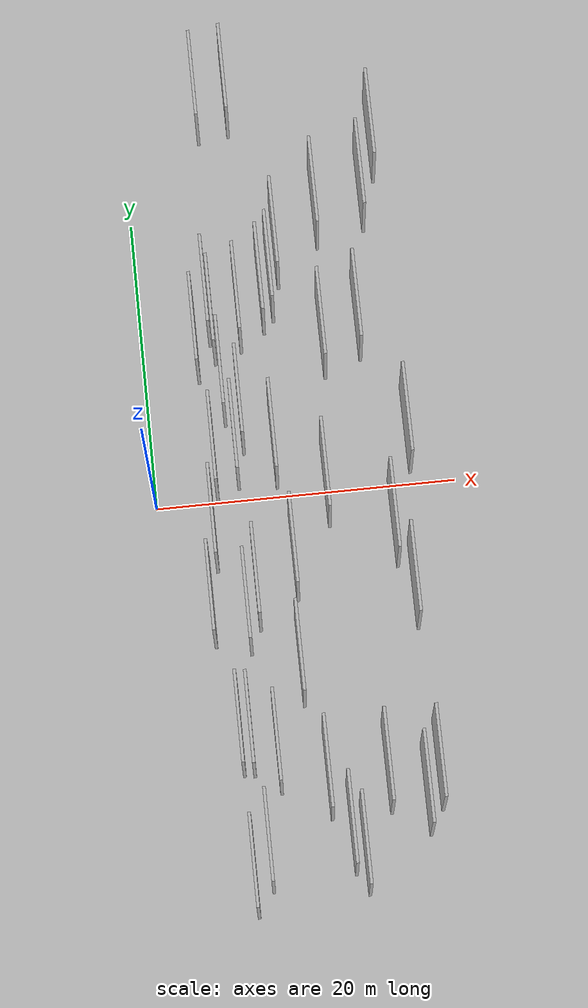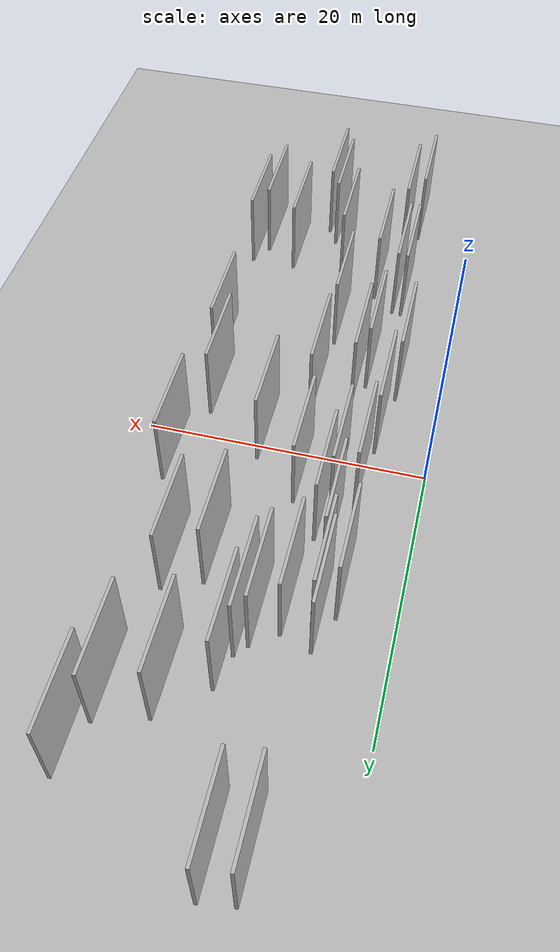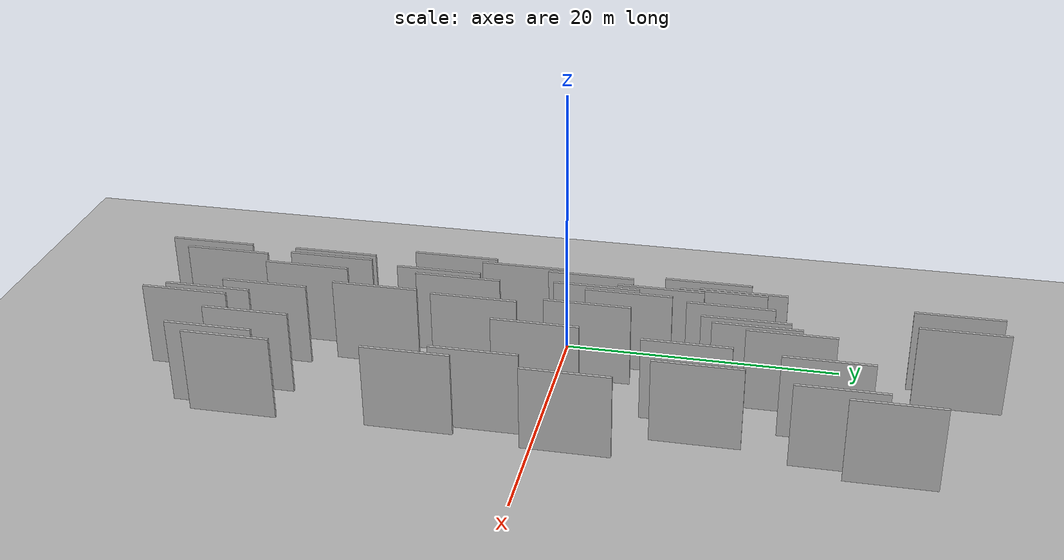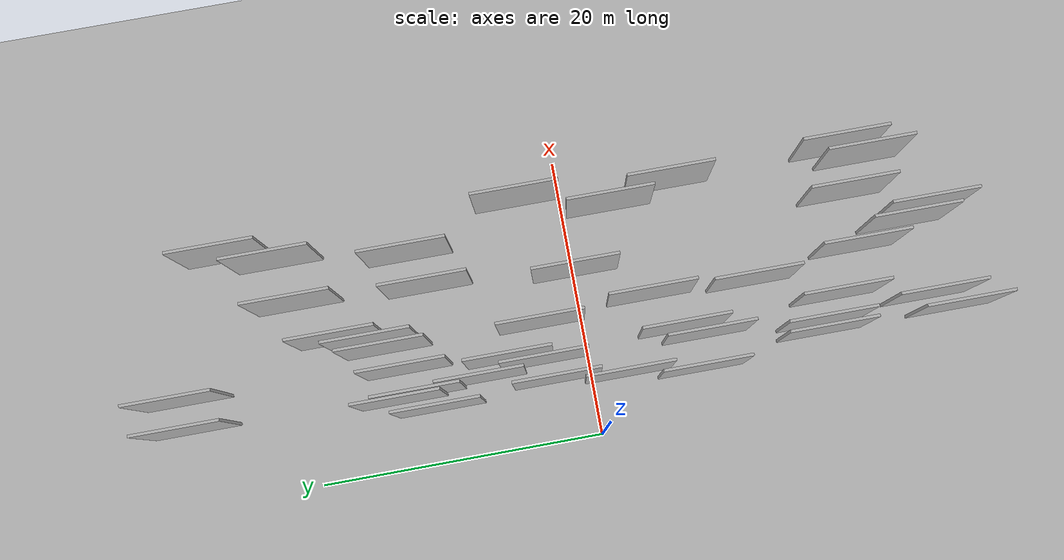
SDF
<?xml version="1.0" encoding="utf-8"?>

<sdf version="1.6">

   <world name="default">

      <gui fullscreen="0">

         <camera name="user_camera">

            <pose>-15 0 4.57585 0 0 0</pose>

            <view_controller>orbit</view_controller>

         </camera>

      </gui>

      <scene>

         <sky>

           <clouds>

             <speed>12</speed>

           </clouds>

         </sky>

         <ambient>0.4 0.4 0.4 1</ambient>

         <background>0.7 0.7 0.7 1</background>

         <shadows>1</shadows>

      </scene>

      <gravity>0 0 -9.8066</gravity>

      <magnetic_field>6e-06 2.3e-05 -4.2e-05</magnetic_field>

      <physics default="0" name="default_physics" type="ode">

         <ode>

            <solver>

               <type>quick</type>

               <iters>10</iters>

               <sor>1.0</sor>

               <use_dynamic_moi_rescaling>0</use_dynamic_moi_rescaling>

            </solver>

            <constraints>

               <cfm>0</cfm>

               <erp>0.2</erp>

               <contact_max_correcting_vel>100</contact_max_correcting_vel>

               <contact_surface_layer>0.001</contact_surface_layer>

            </constraints>

         </ode>

         <max_step_size>0.004</max_step_size>

         <real_time_factor>1</real_time_factor>

         <real_time_update_rate>250</real_time_update_rate>

      </physics>

      <light name="sun" type="directional">

         <cast_shadows>1</cast_shadows>

         <pose>0 0 10 0 0 0</pose>

         <diffuse>0.8 0.8 0.8 1</diffuse>

         <specular>0.2 0.2 0.2 1</specular>

         <attenuation>

            <range>1000</range>

            <constant>0.9</constant>

            <linear>0.01</linear>

            <quadratic>0.001</quadratic>

         </attenuation>

         <direction>-0.5 0.1 -0.9</direction>

      </light>

      <include>

         <name>ground_plane_1</name>

         <uri>model://HANNAS_ground_plane</uri>

         <pose>0 0 0  0 0 0</pose>

      </include>

      <include>

         <name>ground_plane_2</name>

         <uri>model://HANNAS_ground_plane</uri>

         <pose>100 0 0  0 0 0</pose>

      </include>

      <model name="HANNAS_wall_1">

         <static>1</static>

         <pose frame="">9.5216 16.7080 2.5 0.000000 0.000000 1.570796</pose>

         <link name="link">

            <pose frame="">0 0 3.00 0 0 0</pose>

            <collision name="collision">

               <geometry>

                  <box>

                     <size>6.00 0.2 6.00</size>

                  </box>

               </geometry>

               <max_contacts>10</max_contacts>

               <surface>

                  <contact>

                     <ode/>

                  </contact>

                  <bounce/>

                  <friction>

                     <torsional>

                        <ode/>

                     </torsional>

                     <ode/>

                  </friction>

               </surface>

            </collision>

            <visual name="visual">

               <cast_shadows>0</cast_shadows>

               <geometry>

                  <box>

                     <size>6.00 0.2 6.00</size>

                  </box>

               </geometry>

               <material>

                  <script>

                     <uri>model://HANNAS_wall/materials/scripts</uri>

                     <uri>model://HANNAS_wall/materials/textures</uri>

                     <name>vrc/HANNAS_wall</name>

                  </script>

               </material>

            </visual>

            <self_collide>0</self_collide>

            <enable_wind>0</enable_wind>

            <kinematic>0</kinematic>

         </link>

      </model>

      <model name="HANNAS_wall_2">

         <static>1</static>

         <pose frame="">6.0941 -6.5864 2.5 0.000000 0.000000 1.570796</pose>

         <link name="link">

            <pose frame="">0 0 3.00 0 0 0</pose>

            <collision name="collision">

               <geometry>

                  <box>

                     <size>6.00 0.2 6.00</size>

                  </box>

               </geometry>

               <max_contacts>10</max_contacts>

               <surface>

                  <contact>

                     <ode/>

                  </contact>

                  <bounce/>

                  <friction>

                     <torsional>

                        <ode/>

                     </torsional>

                     <ode/>

                  </friction>

               </surface>

            </collision>

            <visual name="visual">

               <cast_shadows>0</cast_shadows>

               <geometry>

                  <box>

                     <size>6.00 0.2 6.00</size>

                  </box>

               </geometry>

               <material>

                  <script>

                     <uri>model://HANNAS_wall/materials/scripts</uri>

                     <uri>model://HANNAS_wall/materials/textures</uri>

                     <name>vrc/HANNAS_wall</name>

                  </script>

               </material>

            </visual>

            <self_collide>0</self_collide>

            <enable_wind>0</enable_wind>

            <kinematic>0</kinematic>

         </link>

      </model>

      <model name="HANNAS_wall_3">

         <static>1</static>

         <pose frame="">15.6950 -21.0629 2.5 0.000000 0.000000 1.570796</pose>

         <link name="link">

            <pose frame="">0 0 3.00 0 0 0</pose>

            <collision name="collision">

               <geometry>

                  <box>

                     <size>6.00 0.2 6.00</size>

                  </box>

               </geometry>

               <max_contacts>10</max_contacts>

               <surface>

                  <contact>

                     <ode/>

                  </contact>

                  <bounce/>

                  <friction>

                     <torsional>

                        <ode/>

                     </torsional>

                     <ode/>

                  </friction>

               </surface>

            </collision>

            <visual name="visual">

               <cast_shadows>0</cast_shadows>

               <geometry>

                  <box>

                     <size>6.00 0.2 6.00</size>

                  </box>

               </geometry>

               <material>

                  <script>

                     <uri>model://HANNAS_wall/materials/scripts</uri>

                     <uri>model://HANNAS_wall/materials/textures</uri>

                     <name>vrc/HANNAS_wall</name>

                  </script>

               </material>

            </visual>

            <self_collide>0</self_collide>

            <enable_wind>0</enable_wind>

            <kinematic>0</kinematic>

         </link>

      </model>

      <model name="HANNAS_wall_4">

         <static>1</static>

         <pose frame="">3.6308 10.6178 2.5 0.000000 0.000000 1.570796</pose>

         <link name="link">

            <pose frame="">0 0 3.00 0 0 0</pose>

            <collision name="collision">

               <geometry>

                  <box>

                     <size>6.00 0.2 6.00</size>

                  </box>

               </geometry>

               <max_contacts>10</max_contacts>

               <surface>

                  <contact>

                     <ode/>

                  </contact>

                  <bounce/>

                  <friction>

                     <torsional>

                        <ode/>

                     </torsional>

                     <ode/>

                  </friction>

               </surface>

            </collision>

            <visual name="visual">

               <cast_shadows>0</cast_shadows>

               <geometry>

                  <box>

                     <size>6.00 0.2 6.00</size>

                  </box>

               </geometry>

               <material>

                  <script>

                     <uri>model://HANNAS_wall/materials/scripts</uri>

                     <uri>model://HANNAS_wall/materials/textures</uri>

                     <name>vrc/HANNAS_wall</name>

                  </script>

               </material>

            </visual>

            <self_collide>0</self_collide>

            <enable_wind>0</enable_wind>

            <kinematic>0</kinematic>

         </link>

      </model>

      <model name="HANNAS_wall_5">

         <static>1</static>

         <pose frame="">7.1737 27.8074 2.5 0.000000 0.000000 1.570796</pose>

         <link name="link">

            <pose frame="">0 0 3.00 0 0 0</pose>

            <collision name="collision">

               <geometry>

                  <box>

                     <size>6.00 0.2 6.00</size>

                  </box>

               </geometry>

               <max_contacts>10</max_contacts>

               <surface>

                  <contact>

                     <ode/>

                  </contact>

                  <bounce/>

                  <friction>

                     <torsional>

                        <ode/>

                     </torsional>

                     <ode/>

                  </friction>

               </surface>

            </collision>

            <visual name="visual">

               <cast_shadows>0</cast_shadows>

               <geometry>

                  <box>

                     <size>6.00 0.2 6.00</size>

                  </box>

               </geometry>

               <material>

                  <script>

                     <uri>model://HANNAS_wall/materials/scripts</uri>

                     <uri>model://HANNAS_wall/materials/textures</uri>

                     <name>vrc/HANNAS_wall</name>

                  </script>

               </material>

            </visual>

            <self_collide>0</self_collide>

            <enable_wind>0</enable_wind>

            <kinematic>0</kinematic>

         </link>

      </model>

      <model name="HANNAS_wall_6">

         <static>1</static>

         <pose frame="">5.5750 3.0882 2.5 0.000000 0.000000 1.570796</pose>

         <link name="link">

            <pose frame="">0 0 3.00 0 0 0</pose>

            <collision name="collision">

               <geometry>

                  <box>

                     <size>6.00 0.2 6.00</size>

                  </box>

               </geometry>

               <max_contacts>10</max_contacts>

               <surface>

                  <contact>

                     <ode/>

                  </contact>

                  <bounce/>

                  <friction>

                     <torsional>

                        <ode/>

                     </torsional>

                     <ode/>

                  </friction>

               </surface>

            </collision>

            <visual name="visual">

               <cast_shadows>0</cast_shadows>

               <geometry>

                  <box>

                     <size>6.00 0.2 6.00</size>

                  </box>

               </geometry>

               <material>

                  <script>

                     <uri>model://HANNAS_wall/materials/scripts</uri>

                     <uri>model://HANNAS_wall/materials/textures</uri>

                     <name>vrc/HANNAS_wall</name>

                  </script>

               </material>

            </visual>

            <self_collide>0</self_collide>

            <enable_wind>0</enable_wind>

            <kinematic>0</kinematic>

         </link>

      </model>

      <model name="HANNAS_wall_7">

         <static>1</static>

         <pose frame="">11.2782 -0.0539 2.5 0.000000 0.000000 1.570796</pose>

         <link name="link">

            <pose frame="">0 0 3.00 0 0 0</pose>

            <collision name="collision">

               <geometry>

                  <box>

                     <size>6.00 0.2 6.00</size>

                  </box>

               </geometry>

               <max_contacts>10</max_contacts>

               <surface>

                  <contact>

                     <ode/>

                  </contact>

                  <bounce/>

                  <friction>

                     <torsional>

                        <ode/>

                     </torsional>

                     <ode/>

                  </friction>

               </surface>

            </collision>

            <visual name="visual">

               <cast_shadows>0</cast_shadows>

               <geometry>

                  <box>

                     <size>6.00 0.2 6.00</size>

                  </box>

               </geometry>

               <material>

                  <script>

                     <uri>model://HANNAS_wall/materials/scripts</uri>

                     <uri>model://HANNAS_wall/materials/textures</uri>

                     <name>vrc/HANNAS_wall</name>

                  </script>

               </material>

            </visual>

            <self_collide>0</self_collide>

            <enable_wind>0</enable_wind>

            <kinematic>0</kinematic>

         </link>

      </model>

      <model name="HANNAS_wall_8">

         <static>1</static>

         <pose frame="">9.4758 -19.4449 2.5 0.000000 0.000000 1.570796</pose>

         <link name="link">

            <pose frame="">0 0 3.00 0 0 0</pose>

            <collision name="collision">

               <geometry>

                  <box>

                     <size>6.00 0.2 6.00</size>

                  </box>

               </geometry>

               <max_contacts>10</max_contacts>

               <surface>

                  <contact>

                     <ode/>

                  </contact>

                  <bounce/>

                  <friction>

                     <torsional>

                        <ode/>

                     </torsional>

                     <ode/>

                  </friction>

               </surface>

            </collision>

            <visual name="visual">

               <cast_shadows>0</cast_shadows>

               <geometry>

                  <box>

                     <size>6.00 0.2 6.00</size>

                  </box>

               </geometry>

               <material>

                  <script>

                     <uri>model://HANNAS_wall/materials/scripts</uri>

                     <uri>model://HANNAS_wall/materials/textures</uri>

                     <name>vrc/HANNAS_wall</name>

                  </script>

               </material>

            </visual>

            <self_collide>0</self_collide>

            <enable_wind>0</enable_wind>

            <kinematic>0</kinematic>

         </link>

      </model>

      <model name="HANNAS_wall_9">

         <static>1</static>

         <pose frame="">6.6198 12.4533 2.5 0.000000 0.000000 1.570796</pose>

         <link name="link">

            <pose frame="">0 0 3.00 0 0 0</pose>

            <collision name="collision">

               <geometry>

                  <box>

                     <size>6.00 0.2 6.00</size>

                  </box>

               </geometry>

               <max_contacts>10</max_contacts>

               <surface>

                  <contact>

                     <ode/>

                  </contact>

                  <bounce/>

                  <friction>

                     <torsional>

                        <ode/>

                     </torsional>

                     <ode/>

                  </friction>

               </surface>

            </collision>

            <visual name="visual">

               <cast_shadows>0</cast_shadows>

               <geometry>

                  <box>

                     <size>6.00 0.2 6.00</size>

                  </box>

               </geometry>

               <material>

                  <script>

                     <uri>model://HANNAS_wall/materials/scripts</uri>

                     <uri>model://HANNAS_wall/materials/textures</uri>

                     <name>vrc/HANNAS_wall</name>

                  </script>

               </material>

            </visual>

            <self_collide>0</self_collide>

            <enable_wind>0</enable_wind>

            <kinematic>0</kinematic>

         </link>

      </model>

      <model name="HANNAS_wall_10">

         <static>1</static>

         <pose frame="">16.9489 3.0974 2.5 0.000000 0.000000 1.570796</pose>

         <link name="link">

            <pose frame="">0 0 3.00 0 0 0</pose>

            <collision name="collision">

               <geometry>

                  <box>

                     <size>6.00 0.2 6.00</size>

                  </box>

               </geometry>

               <max_contacts>10</max_contacts>

               <surface>

                  <contact>

                     <ode/>

                  </contact>

                  <bounce/>

                  <friction>

                     <torsional>

                        <ode/>

                     </torsional>

                     <ode/>

                  </friction>

               </surface>

            </collision>

            <visual name="visual">

               <cast_shadows>0</cast_shadows>

               <geometry>

                  <box>

                     <size>6.00 0.2 6.00</size>

                  </box>

               </geometry>

               <material>

                  <script>

                     <uri>model://HANNAS_wall/materials/scripts</uri>

                     <uri>model://HANNAS_wall/materials/textures</uri>

                     <name>vrc/HANNAS_wall</name>

                  </script>

               </material>

            </visual>

            <self_collide>0</self_collide>

            <enable_wind>0</enable_wind>

            <kinematic>0</kinematic>

         </link>

      </model>

      <model name="HANNAS_wall_11">

         <static>1</static>

         <pose frame="">12.0115 10.1252 2.5 0.000000 0.000000 1.570796</pose>

         <link name="link">

            <pose frame="">0 0 3.00 0 0 0</pose>

            <collision name="collision">

               <geometry>

                  <box>

                     <size>6.00 0.2 6.00</size>

                  </box>

               </geometry>

               <max_contacts>10</max_contacts>

               <surface>

                  <contact>

                     <ode/>

                  </contact>

                  <bounce/>

                  <friction>

                     <torsional>

                        <ode/>

                     </torsional>

                     <ode/>

                  </friction>

               </surface>

            </collision>

            <visual name="visual">

               <cast_shadows>0</cast_shadows>

               <geometry>

                  <box>

                     <size>6.00 0.2 6.00</size>

                  </box>

               </geometry>

               <material>

                  <script>

                     <uri>model://HANNAS_wall/materials/scripts</uri>

                     <uri>model://HANNAS_wall/materials/textures</uri>

                     <name>vrc/HANNAS_wall</name>

                  </script>

               </material>

            </visual>

            <self_collide>0</self_collide>

            <enable_wind>0</enable_wind>

            <kinematic>0</kinematic>

         </link>

      </model>

      <model name="HANNAS_wall_12">

         <static>1</static>

         <pose frame="">16.3393 -7.4817 2.5 0.000000 0.000000 1.570796</pose>

         <link name="link">

            <pose frame="">0 0 3.00 0 0 0</pose>

            <collision name="collision">

               <geometry>

                  <box>

                     <size>6.00 0.2 6.00</size>

                  </box>

               </geometry>

               <max_contacts>10</max_contacts>

               <surface>

                  <contact>

                     <ode/>

                  </contact>

                  <bounce/>

                  <friction>

                     <torsional>

                        <ode/>

                     </torsional>

                     <ode/>

                  </friction>

               </surface>

            </collision>

            <visual name="visual">

               <cast_shadows>0</cast_shadows>

               <geometry>

                  <box>

                     <size>6.00 0.2 6.00</size>

                  </box>

               </geometry>

               <material>

                  <script>

                     <uri>model://HANNAS_wall/materials/scripts</uri>

                     <uri>model://HANNAS_wall/materials/textures</uri>

                     <name>vrc/HANNAS_wall</name>

                  </script>

               </material>

            </visual>

            <self_collide>0</self_collide>

            <enable_wind>0</enable_wind>

            <kinematic>0</kinematic>

         </link>

      </model>

      <model name="HANNAS_wall_13">

         <static>1</static>

         <pose frame="">4.1173 2.4645 2.5 0.000000 0.000000 1.570796</pose>

         <link name="link">

            <pose frame="">0 0 3.00 0 0 0</pose>

            <collision name="collision">

               <geometry>

                  <box>

                     <size>6.00 0.2 6.00</size>

                  </box>

               </geometry>

               <max_contacts>10</max_contacts>

               <surface>

                  <contact>

                     <ode/>

                  </contact>

                  <bounce/>

                  <friction>

                     <torsional>

                        <ode/>

                     </torsional>

                     <ode/>

                  </friction>

               </surface>

            </collision>

            <visual name="visual">

               <cast_shadows>0</cast_shadows>

               <geometry>

                  <box>

                     <size>6.00 0.2 6.00</size>

                  </box>

               </geometry>

               <material>

                  <script>

                     <uri>model://HANNAS_wall/materials/scripts</uri>

                     <uri>model://HANNAS_wall/materials/textures</uri>

                     <name>vrc/HANNAS_wall</name>

                  </script>

               </material>

            </visual>

            <self_collide>0</self_collide>

            <enable_wind>0</enable_wind>

            <kinematic>0</kinematic>

         </link>

      </model>

      <model name="HANNAS_wall_14">

         <static>1</static>

         <pose frame="">12.4123 19.2364 2.5 0.000000 0.000000 1.570796</pose>

         <link name="link">

            <pose frame="">0 0 3.00 0 0 0</pose>

            <collision name="collision">

               <geometry>

                  <box>

                     <size>6.00 0.2 6.00</size>

                  </box>

               </geometry>

               <max_contacts>10</max_contacts>

               <surface>

                  <contact>

                     <ode/>

                  </contact>

                  <bounce/>

                  <friction>

                     <torsional>

                        <ode/>

                     </torsional>

                     <ode/>

                  </friction>

               </surface>

            </collision>

            <visual name="visual">

               <cast_shadows>0</cast_shadows>

               <geometry>

                  <box>

                     <size>6.00 0.2 6.00</size>

                  </box>

               </geometry>

               <material>

                  <script>

                     <uri>model://HANNAS_wall/materials/scripts</uri>

                     <uri>model://HANNAS_wall/materials/textures</uri>

                     <name>vrc/HANNAS_wall</name>

                  </script>

               </material>

            </visual>

            <self_collide>0</self_collide>

            <enable_wind>0</enable_wind>

            <kinematic>0</kinematic>

         </link>

      </model>

      <model name="HANNAS_wall_15">

         <static>1</static>

         <pose frame="">11.3765 -24.5055 2.5 0.000000 0.000000 1.570796</pose>

         <link name="link">

            <pose frame="">0 0 3.00 0 0 0</pose>

            <collision name="collision">

               <geometry>

                  <box>

                     <size>6.00 0.2 6.00</size>

                  </box>

               </geometry>

               <max_contacts>10</max_contacts>

               <surface>

                  <contact>

                     <ode/>

                  </contact>

                  <bounce/>

                  <friction>

                     <torsional>

                        <ode/>

                     </torsional>

                     <ode/>

                  </friction>

               </surface>

            </collision>

            <visual name="visual">

               <cast_shadows>0</cast_shadows>

               <geometry>

                  <box>

                     <size>6.00 0.2 6.00</size>

                  </box>

               </geometry>

               <material>

                  <script>

                     <uri>model://HANNAS_wall/materials/scripts</uri>

                     <uri>model://HANNAS_wall/materials/textures</uri>

                     <name>vrc/HANNAS_wall</name>

                  </script>

               </material>

            </visual>

            <self_collide>0</self_collide>

            <enable_wind>0</enable_wind>

            <kinematic>0</kinematic>

         </link>

      </model>

      <model name="HANNAS_wall_16">

         <static>1</static>

         <pose frame="">13.3270 -19.3992 2.5 0.000000 0.000000 1.570796</pose>

         <link name="link">

            <pose frame="">0 0 3.00 0 0 0</pose>

            <collision name="collision">

               <geometry>

                  <box>

                     <size>6.00 0.2 6.00</size>

                  </box>

               </geometry>

               <max_contacts>10</max_contacts>

               <surface>

                  <contact>

                     <ode/>

                  </contact>

                  <bounce/>

                  <friction>

                     <torsional>

                        <ode/>

                     </torsional>

                     <ode/>

                  </friction>

               </surface>

            </collision>

            <visual name="visual">

               <cast_shadows>0</cast_shadows>

               <geometry>

                  <box>

                     <size>6.00 0.2 6.00</size>

                  </box>

               </geometry>

               <material>

                  <script>

                     <uri>model://HANNAS_wall/materials/scripts</uri>

                     <uri>model://HANNAS_wall/materials/textures</uri>

                     <name>vrc/HANNAS_wall</name>

                  </script>

               </material>

            </visual>

            <self_collide>0</self_collide>

            <enable_wind>0</enable_wind>

            <kinematic>0</kinematic>

         </link>

      </model>

      <model name="HANNAS_wall_17">

         <static>1</static>

         <pose frame="">4.1915 -25.2556 2.5 0.000000 0.000000 1.570796</pose>

         <link name="link">

            <pose frame="">0 0 3.00 0 0 0</pose>

            <collision name="collision">

               <geometry>

                  <box>

                     <size>6.00 0.2 6.00</size>

                  </box>

               </geometry>

               <max_contacts>10</max_contacts>

               <surface>

                  <contact>

                     <ode/>

                  </contact>

                  <bounce/>

                  <friction>

                     <torsional>

                        <ode/>

                     </torsional>

                     <ode/>

                  </friction>

               </surface>

            </collision>

            <visual name="visual">

               <cast_shadows>0</cast_shadows>

               <geometry>

                  <box>

                     <size>6.00 0.2 6.00</size>

                  </box>

               </geometry>

               <material>

                  <script>

                     <uri>model://HANNAS_wall/materials/scripts</uri>

                     <uri>model://HANNAS_wall/materials/textures</uri>

                     <name>vrc/HANNAS_wall</name>

                  </script>

               </material>

            </visual>

            <self_collide>0</self_collide>

            <enable_wind>0</enable_wind>

            <kinematic>0</kinematic>

         </link>

      </model>

      <model name="HANNAS_wall_18">

         <static>1</static>

         <pose frame="">4.1256 -16.0557 2.5 0.000000 0.000000 1.570796</pose>

         <link name="link">

            <pose frame="">0 0 3.00 0 0 0</pose>

            <collision name="collision">

               <geometry>

                  <box>

                     <size>6.00 0.2 6.00</size>

                  </box>

               </geometry>

               <max_contacts>10</max_contacts>

               <surface>

                  <contact>

                     <ode/>

                  </contact>

                  <bounce/>

                  <friction>

                     <torsional>

                        <ode/>

                     </torsional>

                     <ode/>

                  </friction>

               </surface>

            </collision>

            <visual name="visual">

               <cast_shadows>0</cast_shadows>

               <geometry>

                  <box>

                     <size>6.00 0.2 6.00</size>

                  </box>

               </geometry>

               <material>

                  <script>

                     <uri>model://HANNAS_wall/materials/scripts</uri>

                     <uri>model://HANNAS_wall/materials/textures</uri>

                     <name>vrc/HANNAS_wall</name>

                  </script>

               </material>

            </visual>

            <self_collide>0</self_collide>

            <enable_wind>0</enable_wind>

            <kinematic>0</kinematic>

         </link>

      </model>

      <model name="HANNAS_wall_19">

         <static>1</static>

         <pose frame="">8.4395 -11.8730 2.5 0.000000 0.000000 1.570796</pose>

         <link name="link">

            <pose frame="">0 0 3.00 0 0 0</pose>

            <collision name="collision">

               <geometry>

                  <box>

                     <size>6.00 0.2 6.00</size>

                  </box>

               </geometry>

               <max_contacts>10</max_contacts>

               <surface>

                  <contact>

                     <ode/>

                  </contact>

                  <bounce/>

                  <friction>

                     <torsional>

                        <ode/>

                     </torsional>

                     <ode/>

                  </friction>

               </surface>

            </collision>

            <visual name="visual">

               <cast_shadows>0</cast_shadows>

               <geometry>

                  <box>

                     <size>6.00 0.2 6.00</size>

                  </box>

               </geometry>

               <material>

                  <script>

                     <uri>model://HANNAS_wall/materials/scripts</uri>

                     <uri>model://HANNAS_wall/materials/textures</uri>

                     <name>vrc/HANNAS_wall</name>

                  </script>

               </material>

            </visual>

            <self_collide>0</self_collide>

            <enable_wind>0</enable_wind>

            <kinematic>0</kinematic>

         </link>

      </model>

      <model name="HANNAS_wall_20">

         <static>1</static>

         <pose frame="">5.0960 7.4938 2.5 0.000000 0.000000 1.570796</pose>

         <link name="link">

            <pose frame="">0 0 3.00 0 0 0</pose>

            <collision name="collision">

               <geometry>

                  <box>

                     <size>6.00 0.2 6.00</size>

                  </box>

               </geometry>

               <max_contacts>10</max_contacts>

               <surface>

                  <contact>

                     <ode/>

                  </contact>

                  <bounce/>

                  <friction>

                     <torsional>

                        <ode/>

                     </torsional>

                     <ode/>

                  </friction>

               </surface>

            </collision>

            <visual name="visual">

               <cast_shadows>0</cast_shadows>

               <geometry>

                  <box>

                     <size>6.00 0.2 6.00</size>

                  </box>

               </geometry>

               <material>

                  <script>

                     <uri>model://HANNAS_wall/materials/scripts</uri>

                     <uri>model://HANNAS_wall/materials/textures</uri>

                     <name>vrc/HANNAS_wall</name>

                  </script>

               </material>

            </visual>

            <self_collide>0</self_collide>

            <enable_wind>0</enable_wind>

            <kinematic>0</kinematic>

         </link>

      </model>

      <model name="HANNAS_wall_21">

         <static>1</static>

         <pose frame="">4.5917 13.1310 2.5 0.000000 0.000000 1.570796</pose>

         <link name="link">

            <pose frame="">0 0 3.00 0 0 0</pose>

            <collision name="collision">

               <geometry>

                  <box>

                     <size>6.00 0.2 6.00</size>

                  </box>

               </geometry>

               <max_contacts>10</max_contacts>

               <surface>

                  <contact>

                     <ode/>

                  </contact>

                  <bounce/>

                  <friction>

                     <torsional>

                        <ode/>

                     </torsional>

                     <ode/>

                  </friction>

               </surface>

            </collision>

            <visual name="visual">

               <cast_shadows>0</cast_shadows>

               <geometry>

                  <box>

                     <size>6.00 0.2 6.00</size>

                  </box>

               </geometry>

               <material>

                  <script>

                     <uri>model://HANNAS_wall/materials/scripts</uri>

                     <uri>model://HANNAS_wall/materials/textures</uri>

                     <name>vrc/HANNAS_wall</name>

                  </script>

               </material>

            </visual>

            <self_collide>0</self_collide>

            <enable_wind>0</enable_wind>

            <kinematic>0</kinematic>

         </link>

      </model>

      <model name="HANNAS_wall_22">

         <static>1</static>

         <pose frame="">15.4603 -3.1970 2.5 0.000000 0.000000 1.570796</pose>

         <link name="link">

            <pose frame="">0 0 3.00 0 0 0</pose>

            <collision name="collision">

               <geometry>

                  <box>

                     <size>6.00 0.2 6.00</size>

                  </box>

               </geometry>

               <max_contacts>10</max_contacts>

               <surface>

                  <contact>

                     <ode/>

                  </contact>

                  <bounce/>

                  <friction>

                     <torsional>

                        <ode/>

                     </torsional>

                     <ode/>

                  </friction>

               </surface>

            </collision>

            <visual name="visual">

               <cast_shadows>0</cast_shadows>

               <geometry>

                  <box>

                     <size>6.00 0.2 6.00</size>

                  </box>

               </geometry>

               <material>

                  <script>

                     <uri>model://HANNAS_wall/materials/scripts</uri>

                     <uri>model://HANNAS_wall/materials/textures</uri>

                     <name>vrc/HANNAS_wall</name>

                  </script>

               </material>

            </visual>

            <self_collide>0</self_collide>

            <enable_wind>0</enable_wind>

            <kinematic>0</kinematic>

         </link>

      </model>

      <model name="HANNAS_wall_23">

         <static>1</static>

         <pose frame="">8.7132 -4.8242 2.5 0.000000 0.000000 1.570796</pose>

         <link name="link">

            <pose frame="">0 0 3.00 0 0 0</pose>

            <collision name="collision">

               <geometry>

                  <box>

                     <size>6.00 0.2 6.00</size>

                  </box>

               </geometry>

               <max_contacts>10</max_contacts>

               <surface>

                  <contact>

                     <ode/>

                  </contact>

                  <bounce/>

                  <friction>

                     <torsional>

                        <ode/>

                     </torsional>

                     <ode/>

                  </friction>

               </surface>

            </collision>

            <visual name="visual">

               <cast_shadows>0</cast_shadows>

               <geometry>

                  <box>

                     <size>6.00 0.2 6.00</size>

                  </box>

               </geometry>

               <material>

                  <script>

                     <uri>model://HANNAS_wall/materials/scripts</uri>

                     <uri>model://HANNAS_wall/materials/textures</uri>

                     <name>vrc/HANNAS_wall</name>

                  </script>

               </material>

            </visual>

            <self_collide>0</self_collide>

            <enable_wind>0</enable_wind>

            <kinematic>0</kinematic>

         </link>

      </model>

      <model name="HANNAS_wall_24">

         <static>1</static>

         <pose frame="">4.7884 -16.1540 2.5 0.000000 0.000000 1.570796</pose>

         <link name="link">

            <pose frame="">0 0 3.00 0 0 0</pose>

            <collision name="collision">

               <geometry>

                  <box>

                     <size>6.00 0.2 6.00</size>

                  </box>

               </geometry>

               <max_contacts>10</max_contacts>

               <surface>

                  <contact>

                     <ode/>

                  </contact>

                  <bounce/>

                  <friction>

                     <torsional>

                        <ode/>

                     </torsional>

                     <ode/>

                  </friction>

               </surface>

            </collision>

            <visual name="visual">

               <cast_shadows>0</cast_shadows>

               <geometry>

                  <box>

                     <size>6.00 0.2 6.00</size>

                  </box>

               </geometry>

               <material>

                  <script>

                     <uri>model://HANNAS_wall/materials/scripts</uri>

                     <uri>model://HANNAS_wall/materials/textures</uri>

                     <name>vrc/HANNAS_wall</name>

                  </script>

               </material>

            </visual>

            <self_collide>0</self_collide>

            <enable_wind>0</enable_wind>

            <kinematic>0</kinematic>

         </link>

      </model>

      <model name="HANNAS_wall_25">

         <static>1</static>

         <pose frame="">5.3555 -8.1354 2.5 0.000000 0.000000 1.570796</pose>

         <link name="link">

            <pose frame="">0 0 3.00 0 0 0</pose>

            <collision name="collision">

               <geometry>

                  <box>

                     <size>6.00 0.2 6.00</size>

                  </box>

               </geometry>

               <max_contacts>10</max_contacts>

               <surface>

                  <contact>

                     <ode/>

                  </contact>

                  <bounce/>

                  <friction>

                     <torsional>

                        <ode/>

                     </torsional>

                     <ode/>

                  </friction>

               </surface>

            </collision>

            <visual name="visual">

               <cast_shadows>0</cast_shadows>

               <geometry>

                  <box>

                     <size>6.00 0.2 6.00</size>

                  </box>

               </geometry>

               <material>

                  <script>

                     <uri>model://HANNAS_wall/materials/scripts</uri>

                     <uri>model://HANNAS_wall/materials/textures</uri>

                     <name>vrc/HANNAS_wall</name>

                  </script>

               </material>

            </visual>

            <self_collide>0</self_collide>

            <enable_wind>0</enable_wind>

            <kinematic>0</kinematic>

         </link>

      </model>

      <model name="HANNAS_wall_26">

         <static>1</static>

         <pose frame="">8.1038 2.8939 2.5 0.000000 0.000000 1.570796</pose>

         <link name="link">

            <pose frame="">0 0 3.00 0 0 0</pose>

            <collision name="collision">

               <geometry>

                  <box>

                     <size>6.00 0.2 6.00</size>

                  </box>

               </geometry>

               <max_contacts>10</max_contacts>

               <surface>

                  <contact>

                     <ode/>

                  </contact>

                  <bounce/>

                  <friction>

                     <torsional>

                        <ode/>

                     </torsional>

                     <ode/>

                  </friction>

               </surface>

            </collision>

            <visual name="visual">

               <cast_shadows>0</cast_shadows>

               <geometry>

                  <box>

                     <size>6.00 0.2 6.00</size>

                  </box>

               </geometry>

               <material>

                  <script>

                     <uri>model://HANNAS_wall/materials/scripts</uri>

                     <uri>model://HANNAS_wall/materials/textures</uri>

                     <name>vrc/HANNAS_wall</name>

                  </script>

               </material>

            </visual>

            <self_collide>0</self_collide>

            <enable_wind>0</enable_wind>

            <kinematic>0</kinematic>

         </link>

      </model>

      <model name="HANNAS_wall_27">

         <static>1</static>

         <pose frame="">4.8388 11.7817 2.5 0.000000 0.000000 1.570796</pose>

         <link name="link">

            <pose frame="">0 0 3.00 0 0 0</pose>

            <collision name="collision">

               <geometry>

                  <box>

                     <size>6.00 0.2 6.00</size>

                  </box>

               </geometry>

               <max_contacts>10</max_contacts>

               <surface>

                  <contact>

                     <ode/>

                  </contact>

                  <bounce/>

                  <friction>

                     <torsional>

                        <ode/>

                     </torsional>

                     <ode/>

                  </friction>

               </surface>

            </collision>

            <visual name="visual">

               <cast_shadows>0</cast_shadows>

               <geometry>

                  <box>

                     <size>6.00 0.2 6.00</size>

                  </box>

               </geometry>

               <material>

                  <script>

                     <uri>model://HANNAS_wall/materials/scripts</uri>

                     <uri>model://HANNAS_wall/materials/textures</uri>

                     <name>vrc/HANNAS_wall</name>

                  </script>

               </material>

            </visual>

            <self_collide>0</self_collide>

            <enable_wind>0</enable_wind>

            <kinematic>0</kinematic>

         </link>

      </model>

      <model name="HANNAS_wall_28">

         <static>1</static>

         <pose frame="">8.9540 14.4108 2.5 0.000000 0.000000 1.570796</pose>

         <link name="link">

            <pose frame="">0 0 3.00 0 0 0</pose>

            <collision name="collision">

               <geometry>

                  <box>

                     <size>6.00 0.2 6.00</size>

                  </box>

               </geometry>

               <max_contacts>10</max_contacts>

               <surface>

                  <contact>

                     <ode/>

                  </contact>

                  <bounce/>

                  <friction>

                     <torsional>

                        <ode/>

                     </torsional>

                     <ode/>

                  </friction>

               </surface>

            </collision>

            <visual name="visual">

               <cast_shadows>0</cast_shadows>

               <geometry>

                  <box>

                     <size>6.00 0.2 6.00</size>

                  </box>

               </geometry>

               <material>

                  <script>

                     <uri>model://HANNAS_wall/materials/scripts</uri>

                     <uri>model://HANNAS_wall/materials/textures</uri>

                     <name>vrc/HANNAS_wall</name>

                  </script>

               </material>

            </visual>

            <self_collide>0</self_collide>

            <enable_wind>0</enable_wind>

            <kinematic>0</kinematic>

         </link>

      </model>

      <model name="HANNAS_wall_29">

         <static>1</static>

         <pose frame="">6.4015 -17.4471 2.5 0.000000 0.000000 1.570796</pose>

         <link name="link">

            <pose frame="">0 0 3.00 0 0 0</pose>

            <collision name="collision">

               <geometry>

                  <box>

                     <size>6.00 0.2 6.00</size>

                  </box>

               </geometry>

               <max_contacts>10</max_contacts>

               <surface>

                  <contact>

                     <ode/>

                  </contact>

                  <bounce/>

                  <friction>

                     <torsional>

                        <ode/>

                     </torsional>

                     <ode/>

                  </friction>

               </surface>

            </collision>

            <visual name="visual">

               <cast_shadows>0</cast_shadows>

               <geometry>

                  <box>

                     <size>6.00 0.2 6.00</size>

                  </box>

               </geometry>

               <material>

                  <script>

                     <uri>model://HANNAS_wall/materials/scripts</uri>

                     <uri>model://HANNAS_wall/materials/textures</uri>

                     <name>vrc/HANNAS_wall</name>

                  </script>

               </material>

            </visual>

            <self_collide>0</self_collide>

            <enable_wind>0</enable_wind>

            <kinematic>0</kinematic>

         </link>

      </model>

      <model name="HANNAS_wall_30">

         <static>1</static>

         <pose frame="">5.1383 27.5080 2.5 0.000000 0.000000 1.570796</pose>

         <link name="link">

            <pose frame="">0 0 3.00 0 0 0</pose>

            <collision name="collision">

               <geometry>

                  <box>

                     <size>6.00 0.2 6.00</size>

                  </box>

               </geometry>

               <max_contacts>10</max_contacts>

               <surface>

                  <contact>

                     <ode/>

                  </contact>

                  <bounce/>

                  <friction>

                     <torsional>

                        <ode/>

                     </torsional>

                     <ode/>

                  </friction>

               </surface>

            </collision>

            <visual name="visual">

               <cast_shadows>0</cast_shadows>

               <geometry>

                  <box>

                     <size>6.00 0.2 6.00</size>

                  </box>

               </geometry>

               <material>

                  <script>

                     <uri>model://HANNAS_wall/materials/scripts</uri>

                     <uri>model://HANNAS_wall/materials/textures</uri>

                     <name>vrc/HANNAS_wall</name>

                  </script>

               </material>

            </visual>

            <self_collide>0</self_collide>

            <enable_wind>0</enable_wind>

            <kinematic>0</kinematic>

         </link>

      </model>

      <model name="HANNAS_wall_31">

         <static>1</static>

         <pose frame="">16.6461 23.6377 2.5 0.000000 0.000000 1.570796</pose>

         <link name="link">

            <pose frame="">0 0 3.00 0 0 0</pose>

            <collision name="collision">

               <geometry>

                  <box>

                     <size>6.00 0.2 6.00</size>

                  </box>

               </geometry>

               <max_contacts>10</max_contacts>

               <surface>

                  <contact>

                     <ode/>

                  </contact>

                  <bounce/>

                  <friction>

                     <torsional>

                        <ode/>

                     </torsional>

                     <ode/>

                  </friction>

               </surface>

            </collision>

            <visual name="visual">

               <cast_shadows>0</cast_shadows>

               <geometry>

                  <box>

                     <size>6.00 0.2 6.00</size>

                  </box>

               </geometry>

               <material>

                  <script>

                     <uri>model://HANNAS_wall/materials/scripts</uri>

                     <uri>model://HANNAS_wall/materials/textures</uri>

                     <name>vrc/HANNAS_wall</name>

                  </script>

               </material>

            </visual>

            <self_collide>0</self_collide>

            <enable_wind>0</enable_wind>

            <kinematic>0</kinematic>

         </link>

      </model>

      <model name="HANNAS_wall_32">

         <static>1</static>

         <pose frame="">8.2579 13.6173 2.5 0.000000 0.000000 1.570796</pose>

         <link name="link">

            <pose frame="">0 0 3.00 0 0 0</pose>

            <collision name="collision">

               <geometry>

                  <box>

                     <size>6.00 0.2 6.00</size>

                  </box>

               </geometry>

               <max_contacts>10</max_contacts>

               <surface>

                  <contact>

                     <ode/>

                  </contact>

                  <bounce/>

                  <friction>

                     <torsional>

                        <ode/>

                     </torsional>

                     <ode/>

                  </friction>

               </surface>

            </collision>

            <visual name="visual">

               <cast_shadows>0</cast_shadows>

               <geometry>

                  <box>

                     <size>6.00 0.2 6.00</size>

                  </box>

               </geometry>

               <material>

                  <script>

                     <uri>model://HANNAS_wall/materials/scripts</uri>

                     <uri>model://HANNAS_wall/materials/textures</uri>

                     <name>vrc/HANNAS_wall</name>

                  </script>

               </material>

            </visual>

            <self_collide>0</self_collide>

            <enable_wind>0</enable_wind>

            <kinematic>0</kinematic>

         </link>

      </model>

      <model name="HANNAS_wall_33">

         <static>1</static>

         <pose frame="">15.6154 20.1854 2.5 0.000000 0.000000 1.570796</pose>

         <link name="link">

            <pose frame="">0 0 3.00 0 0 0</pose>

            <collision name="collision">

               <geometry>

                  <box>

                     <size>6.00 0.2 6.00</size>

                  </box>

               </geometry>

               <max_contacts>10</max_contacts>

               <surface>

                  <contact>

                     <ode/>

                  </contact>

                  <bounce/>

                  <friction>

                     <torsional>

                        <ode/>

                     </torsional>

                     <ode/>

                  </friction>

               </surface>

            </collision>

            <visual name="visual">

               <cast_shadows>0</cast_shadows>

               <geometry>

                  <box>

                     <size>6.00 0.2 6.00</size>

                  </box>

               </geometry>

               <material>

                  <script>

                     <uri>model://HANNAS_wall/materials/scripts</uri>

                     <uri>model://HANNAS_wall/materials/textures</uri>

                     <name>vrc/HANNAS_wall</name>

                  </script>

               </material>

            </visual>

            <self_collide>0</self_collide>

            <enable_wind>0</enable_wind>

            <kinematic>0</kinematic>

         </link>

      </model>

      <model name="HANNAS_wall_34">

         <static>1</static>

         <pose frame="">16.6260 -19.5157 2.5 0.000000 0.000000 1.570796</pose>

         <link name="link">

            <pose frame="">0 0 3.00 0 0 0</pose>

            <collision name="collision">

               <geometry>

                  <box>

                     <size>6.00 0.2 6.00</size>

                  </box>

               </geometry>

               <max_contacts>10</max_contacts>

               <surface>

                  <contact>

                     <ode/>

                  </contact>

                  <bounce/>

                  <friction>

                     <torsional>

                        <ode/>

                     </torsional>

                     <ode/>

                  </friction>

               </surface>

            </collision>

            <visual name="visual">

               <cast_shadows>0</cast_shadows>

               <geometry>

                  <box>

                     <size>6.00 0.2 6.00</size>

                  </box>

               </geometry>

               <material>

                  <script>

                     <uri>model://HANNAS_wall/materials/scripts</uri>

                     <uri>model://HANNAS_wall/materials/textures</uri>

                     <name>vrc/HANNAS_wall</name>

                  </script>

               </material>

            </visual>

            <self_collide>0</self_collide>

            <enable_wind>0</enable_wind>

            <kinematic>0</kinematic>

         </link>

      </model>

      <model name="HANNAS_wall_35">

         <static>1</static>

         <pose frame="">6.1271 5.4344 2.5 0.000000 0.000000 1.570796</pose>

         <link name="link">

            <pose frame="">0 0 3.00 0 0 0</pose>

            <collision name="collision">

               <geometry>

                  <box>

                     <size>6.00 0.2 6.00</size>

                  </box>

               </geometry>

               <max_contacts>10</max_contacts>

               <surface>

                  <contact>

                     <ode/>

                  </contact>

                  <bounce/>

                  <friction>

                     <torsional>

                        <ode/>

                     </torsional>

                     <ode/>

                  </friction>

               </surface>

            </collision>

            <visual name="visual">

               <cast_shadows>0</cast_shadows>

               <geometry>

                  <box>

                     <size>6.00 0.2 6.00</size>

                  </box>

               </geometry>

               <material>

                  <script>

                     <uri>model://HANNAS_wall/materials/scripts</uri>

                     <uri>model://HANNAS_wall/materials/textures</uri>

                     <name>vrc/HANNAS_wall</name>

                  </script>

               </material>

            </visual>

            <self_collide>0</self_collide>

            <enable_wind>0</enable_wind>

            <kinematic>0</kinematic>

         </link>

      </model>

      <model name="HANNAS_wall_36">

         <static>1</static>

         <pose frame="">3.0910 -7.4250 2.5 0.000000 0.000000 1.570796</pose>

         <link name="link">

            <pose frame="">0 0 3.00 0 0 0</pose>

            <collision name="collision">

               <geometry>

                  <box>

                     <size>6.00 0.2 6.00</size>

                  </box>

               </geometry>

               <max_contacts>10</max_contacts>

               <surface>

                  <contact>

                     <ode/>

                  </contact>

                  <bounce/>

                  <friction>

                     <torsional>

                        <ode/>

                     </torsional>

                     <ode/>

                  </friction>

               </surface>

            </collision>

            <visual name="visual">

               <cast_shadows>0</cast_shadows>

               <geometry>

                  <box>

                     <size>6.00 0.2 6.00</size>

                  </box>

               </geometry>

               <material>

                  <script>

                     <uri>model://HANNAS_wall/materials/scripts</uri>

                     <uri>model://HANNAS_wall/materials/textures</uri>

                     <name>vrc/HANNAS_wall</name>

                  </script>

               </material>

            </visual>

            <self_collide>0</self_collide>

            <enable_wind>0</enable_wind>

            <kinematic>0</kinematic>

         </link>

      </model>

      <model name="HANNAS_wall_37">

         <static>1</static>

         <pose frame="">5.2783 -23.7277 2.5 0.000000 0.000000 1.570796</pose>

         <link name="link">

            <pose frame="">0 0 3.00 0 0 0</pose>

            <collision name="collision">

               <geometry>

                  <box>

                     <size>6.00 0.2 6.00</size>

                  </box>

               </geometry>

               <max_contacts>10</max_contacts>

               <surface>

                  <contact>

                     <ode/>

                  </contact>

                  <bounce/>

                  <friction>

                     <torsional>

                        <ode/>

                     </torsional>

                     <ode/>

                  </friction>

               </surface>

            </collision>

            <visual name="visual">

               <cast_shadows>0</cast_shadows>

               <geometry>

                  <box>

                     <size>6.00 0.2 6.00</size>

                  </box>

               </geometry>

               <material>

                  <script>

                     <uri>model://HANNAS_wall/materials/scripts</uri>

                     <uri>model://HANNAS_wall/materials/textures</uri>

                     <name>vrc/HANNAS_wall</name>

                  </script>

               </material>

            </visual>

            <self_collide>0</self_collide>

            <enable_wind>0</enable_wind>

            <kinematic>0</kinematic>

         </link>

      </model>

      <model name="HANNAS_wall_38">

         <static>1</static>

         <pose frame="">10.6507 -23.1259 2.5 0.000000 0.000000 1.570796</pose>

         <link name="link">

            <pose frame="">0 0 3.00 0 0 0</pose>

            <collision name="collision">

               <geometry>

                  <box>

                     <size>6.00 0.2 6.00</size>

                  </box>

               </geometry>

               <max_contacts>10</max_contacts>

               <surface>

                  <contact>

                     <ode/>

                  </contact>

                  <bounce/>

                  <friction>

                     <torsional>

                        <ode/>

                     </torsional>

                     <ode/>

                  </friction>

               </surface>

            </collision>

            <visual name="visual">

               <cast_shadows>0</cast_shadows>

               <geometry>

                  <box>

                     <size>6.00 0.2 6.00</size>

                  </box>

               </geometry>

               <material>

                  <script>

                     <uri>model://HANNAS_wall/materials/scripts</uri>

                     <uri>model://HANNAS_wall/materials/textures</uri>

                     <name>vrc/HANNAS_wall</name>

                  </script>

               </material>

            </visual>

            <self_collide>0</self_collide>

            <enable_wind>0</enable_wind>

            <kinematic>0</kinematic>

         </link>

      </model>

      <model name="HANNAS_wall_39">

         <static>1</static>

         <pose frame="">3.6716 -2.3843 2.5 0.000000 0.000000 1.570796</pose>

         <link name="link">

            <pose frame="">0 0 3.00 0 0 0</pose>

            <collision name="collision">

               <geometry>

                  <box>

                     <size>6.00 0.2 6.00</size>

                  </box>

               </geometry>

               <max_contacts>10</max_contacts>

               <surface>

                  <contact>

                     <ode/>

                  </contact>

                  <bounce/>

                  <friction>

                     <torsional>

                        <ode/>

                     </torsional>

                     <ode/>

                  </friction>

               </surface>

            </collision>

            <visual name="visual">

               <cast_shadows>0</cast_shadows>

               <geometry>

                  <box>

                     <size>6.00 0.2 6.00</size>

                  </box>

               </geometry>

               <material>

                  <script>

                     <uri>model://HANNAS_wall/materials/scripts</uri>

                     <uri>model://HANNAS_wall/materials/textures</uri>

                     <name>vrc/HANNAS_wall</name>

                  </script>

               </material>

            </visual>

            <self_collide>0</self_collide>

            <enable_wind>0</enable_wind>

            <kinematic>0</kinematic>

         </link>

      </model>

      <model name="HANNAS_wall_40">

         <static>1</static>

         <pose frame="">14.4734 11.1357 2.5 0.000000 0.000000 1.570796</pose>

         <link name="link">

            <pose frame="">0 0 3.00 0 0 0</pose>

            <collision name="collision">

               <geometry>

                  <box>

                     <size>6.00 0.2 6.00</size>

                  </box>

               </geometry>

               <max_contacts>10</max_contacts>

               <surface>

                  <contact>

                     <ode/>

                  </contact>

                  <bounce/>

                  <friction>

                     <torsional>

                        <ode/>

                     </torsional>

                     <ode/>

                  </friction>

               </surface>

            </collision>

            <visual name="visual">

               <cast_shadows>0</cast_shadows>

               <geometry>

                  <box>

                     <size>6.00 0.2 6.00</size>

                  </box>

               </geometry>

               <material>

                  <script>

                     <uri>model://HANNAS_wall/materials/scripts</uri>

                     <uri>model://HANNAS_wall/materials/textures</uri>

                     <name>vrc/HANNAS_wall</name>

                  </script>

               </material>

            </visual>

            <self_collide>0</self_collide>

            <enable_wind>0</enable_wind>

            <kinematic>0</kinematic>

         </link>

      </model>

   </world>

</sdf>
